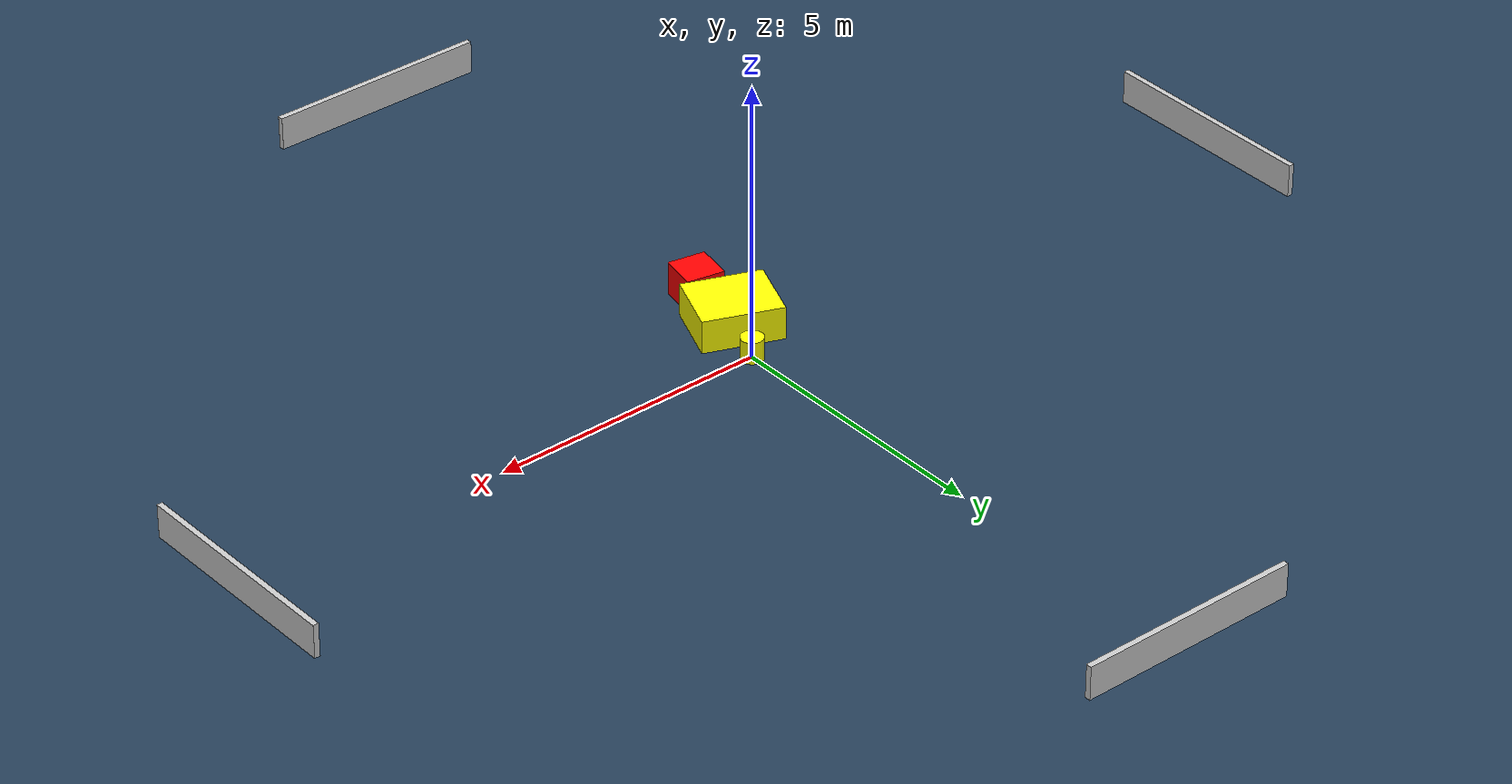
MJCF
<?xml version="1.0" ?>
<mujoco model="generated_environment">
  <option timestep="0.01" integrator="RK4" cone="elliptic"/>
  <default>
    <geom density="1"/>
  </default>
  <asset>
    <texture builtin="gradient" height="3072" name="skybox" rgb1="0.3 0.5 0.7" rgb2="0 0 0" type="skybox" width="512"/>
    <texture builtin="checker" height="300" name="groundplane" rgb1="0.2 0.3 0.4" rgb2="0.1 0.2 0.3" type="2d" width="300"/>
    <material name="groundplane" reflectance="0.2" texrepeat="5 5" texture="groundplane"/>
  </asset>
  <worldbody>
    <light dir="0 0 -1" directional="true" pos="0 0 1.5"/>
    <geom condim="3" friction="0.5 0.005 0.001" material="groundplane" name="floor" pos="0 0 0" size="0 0 0.05" type="plane"/>
    <body name="walls">
      <geom name="wall_1" condim="4" pos="-10.0 0.0 0.3" rgba="0.800000011920929 0.800000011920929 0.800000011920929 1.0" size="0.05 2.0 0.3" type="box"/>
      <geom name="wall_2" condim="4" pos="10.0 0.0 0.3" rgba="0.800000011920929 0.800000011920929 0.800000011920929 1.0" size="0.05 2.0 0.3" type="box"/>
      <geom name="wall_3" condim="4" pos="0.0 -10.0 0.3" rgba="0.800000011920929 0.800000011920929 0.800000011920929 1.0" size="2.0 0.05 0.3" type="box"/>
      <geom name="wall_4" condim="4" pos="0.0 10.0 0.3" rgba="0.800000011920929 0.800000011920929 0.800000011920929 1.0" size="2.0 0.05 0.3" type="box"/>
    </body>
    <body name="robot">
      <joint name="joint_x" type="slide" pos="0 0 0" axis="1 0 0"/>
      <joint name="joint_y" type="slide" pos="0 0 0" axis="0 1 0"/>
      <geom name="robot" type="cylinder" pos="0.0 0.0 0.2" size="0.2 0.2 0.0" mass="5.0" friction="1.0 0.005 0.0001" condim="4" rgba="1.0 1.0 0.0 1.0"/>
    </body>
    <body name="obstacle_1_movable">
      <geom name="obstacle_1_movable" condim="4" pos="-0.3319537522756243 -0.8878405468537879 0.3" euler="0 0 158.20815105788927" friction="0.0 0.005 0.001" rgba="1.0 1.0 0.0 1.0" size="0.7057336952939355 0.5893319034468955 0.3" type="box" mass="0.1"/>
      <joint type="free"/>
    </body>
    <body name="obstacle_2_static">
      <geom name="obstacle_2_static" condim="4" pos="-0.4248075816832391 -1.9185099615804517 0.3" euler="0 0 168.97375170942078" friction="0.0 0.005 0.001" rgba="1.0 0.0 0.0 1.0" size="0.336595339384689 0.33594842170257155 0.3" type="box"/>
    </body>
  </worldbody>
  <actuator>
    <motor name="actuator_x" joint="joint_x" gear="1" ctrlrange="-1 1"/>
    <motor name="actuator_y" joint="joint_y" gear="1" ctrlrange="-1 1"/>
  </actuator>
</mujoco>
